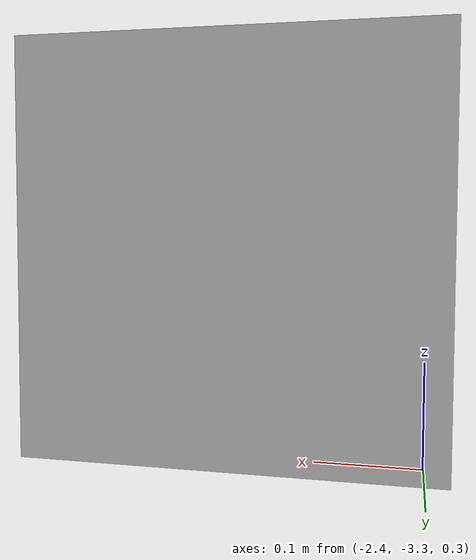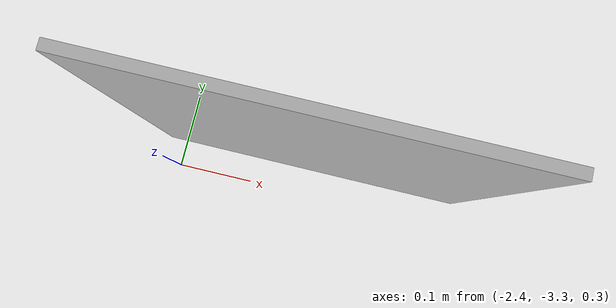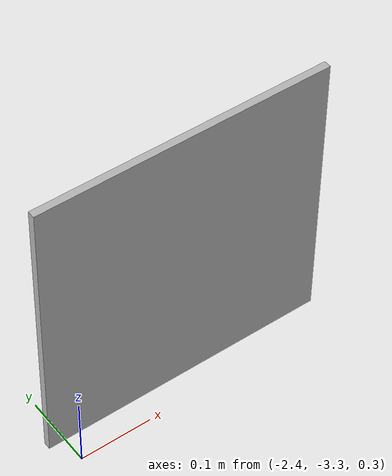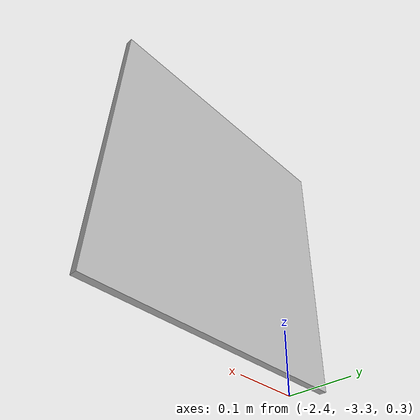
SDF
<?xml version="1.0"?>
<sdf version="1.6">
    <model name='frame'>
      <pose frame=''>-2.22263 -3.26093 0.500024 0.0072 -0 0</pose>
      <link name='link'>
        <inertial>
          <mass>1</mass>
          <inertia>
            <ixx>0.166667</ixx>
            <ixy>0</ixy>
            <ixz>0</ixz>
            <iyy>0.166667</iyy>
            <iyz>0</iyz>
            <izz>0.166667</izz>
          </inertia>
        </inertial>
        <collision name='collision'>
          <geometry>
            <box>
              <size>0.4 0.010204 0.4</size>
            </box>
          </geometry>
          <max_contacts>10</max_contacts>
          <surface>
            <contact>
              <ode/>
            </contact>
            <bounce/>
            <friction>
              <torsional>
                <ode/>
              </torsional>
              <ode/>
            </friction>
          </surface>
        </collision>
        <visual name='visual'>
          <geometry>
            <box>
              <size>0.4 0.010204 0.4</size>
            </box>
          </geometry>
          <material>
            <script>
              <uri>model://frames/materials/scripts</uri>
              <uri>model://frames/materials/textures</uri>
              <name>LetterA/Diffuse</name>
            </script>
          </material>
        </visual>
        <self_collide>0</self_collide>
        <enable_wind>0</enable_wind>
        <kinematic>0</kinematic>
      </link>
    </model>
</sdf>
